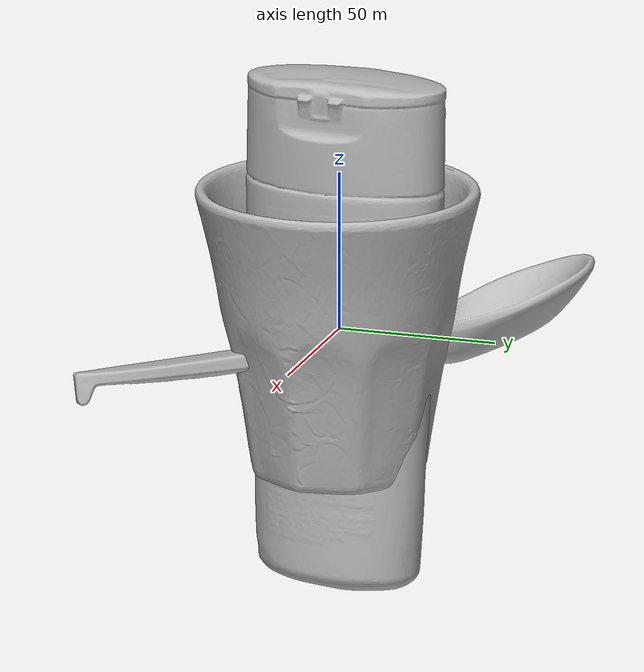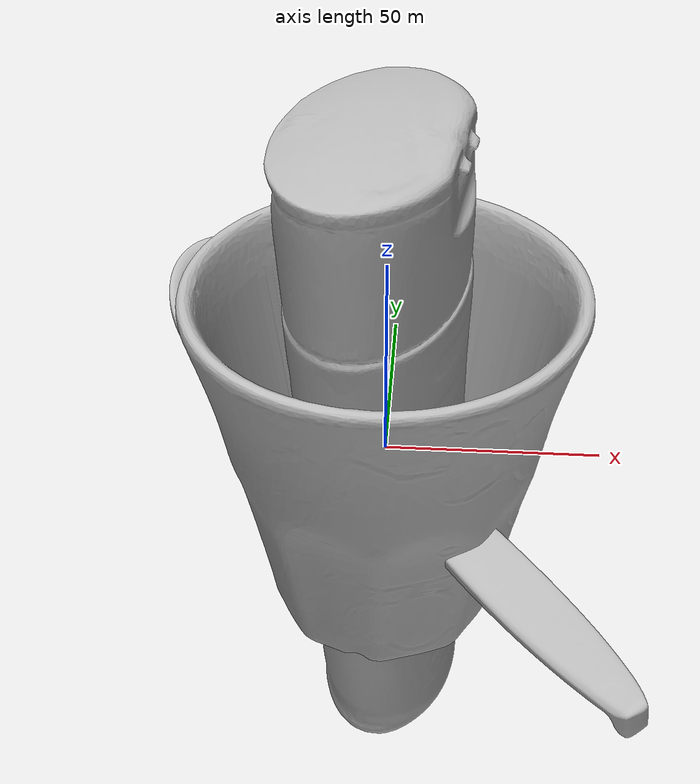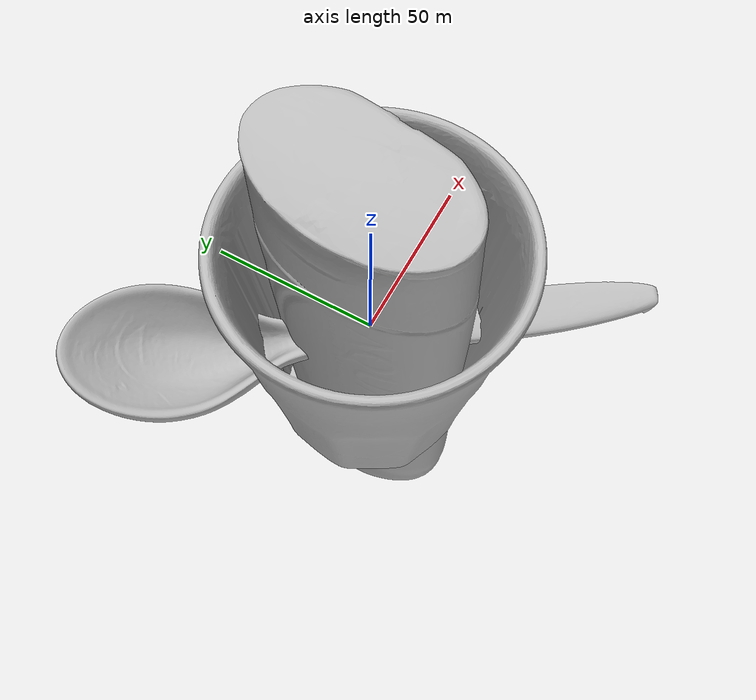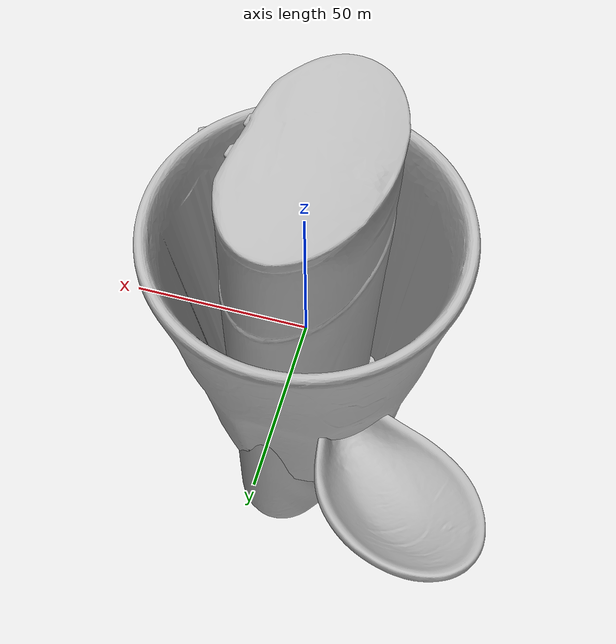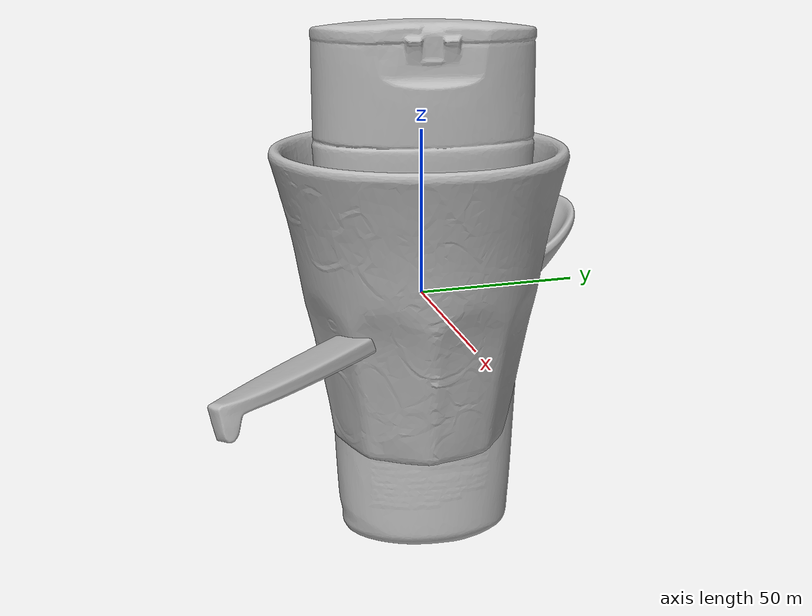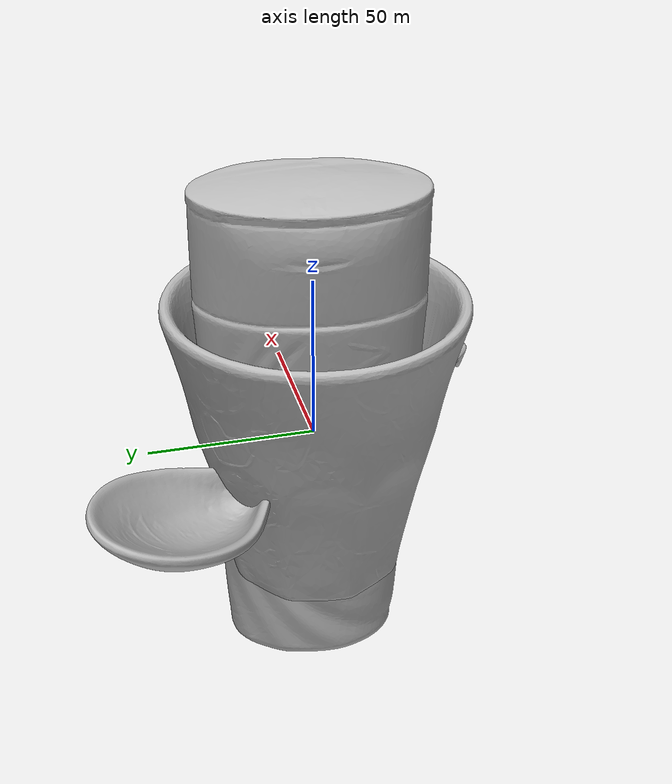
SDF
<sdf version="1.4">
 <world name="default">
  <light name="light1" type="point">
   <pose>0 0 1 0 0 0</pose>
   <diffuse>3 3 3 1</diffuse>
   <specular>3 3 3 1</specular>
  </light>
  <light name="light2" type="point">
   <pose>0 0.5 2 0 0 0</pose>
   <diffuse>1 1 1 1</diffuse>
   <specular>1 1 1 1</specular>
  </light>
  <light name="light3" type="point">
   <pose>0 0.5 2 0 0 0</pose>
   <diffuse>3 3 3 1</diffuse>
   <specular>3 3 3 1</specular>
  </light>
  <scene><ambient>0.7 0.7 0.7</ambient></scene>
  <model name="bottle1">
   <link name="link_bottle1">
    <collision name="default">
     <geometry>
      <mesh><uri>model://conditioner/collision_meshes/collision.obj</uri><scale>1.0 1.0 1.0</scale></mesh>
     </geometry>
     <surface>
      <friction><ode><mu>0.5</mu><mu2>0.5</mu2></ode></friction>
      <contact><ode><max_vel>0</max_vel><min_depth>0.0001</min_depth><kp>1e8</kp></ode></contact>
     </surface>
    </collision>
    <visual name="default">
     <geometry>
      <mesh><uri>model://conditioner/visual_meshes/visual.dae</uri><scale>1.0 1.0 1.0</scale></mesh>
     </geometry>
    </visual>
    <inertial>
     <mass>0.31316134333610535</mass>
     <pose>-0.00055994390277192 -0.0001729748910292983 0.004359682556241751 -0.005038373535624127 0.01530604069317056 0.015072338587352078</pose>
     <inertia>
      <ixx>0.0006812382</ixx>
      <iyy>0.000729753</iyy>
      <izz>0.000105037434</izz>
      <ixy>0</ixy>
      <ixz>0</ixz>
      <iyz>0</iyz>
     </inertia>
    </inertial>
   </link>
   <pose>-0.08207866549491882 0.1951899230480194 0.0812298133969307 0.036893564721758455 -0.01566362934134836 -1.7452720954728804</pose>
  </model>
  <model name="bottle2">
   <link name="link_bottle2">
    <collision name="default">
     <geometry>
      <mesh><uri>model://pigeon/collision_meshes/collision.obj</uri><scale>1.0 1.0 1.0</scale></mesh>
     </geometry>
     <surface>
      <friction><ode><mu>0.5</mu><mu2>0.5</mu2></ode></friction>
      <contact><ode><max_vel>0</max_vel><min_depth>0.0001</min_depth><kp>1e8</kp></ode></contact>
     </surface>
    </collision>
    <visual name="default">
     <geometry><mesh><uri>model://pigeon/visual_meshes/visual.dae</uri><scale>1.0 1.0 1.0</scale></mesh></geometry>
    </visual>
    <inertial>
     <mass>0.6510184407234192</mass>
     <pose>-9.675473847892135e-05 -0.00019276776583865285 -0.01593620888888836 -0.011704407543161608 -0.0012978192378484078 -0.04198827283679603</pose>
     <inertia>
      <ixx>0.0016273881</ixx>
      <iyy>0.0017372583</iyy>
      <izz>0.00033475916</izz>
      <ixy>0</ixy>
      <ixz>0</ixz>
      <iyz>0</iyz>
     </inertia>
    </inertial>
   </link>
   <pose>0.2664254307746887 0.07196906208992004 0.09864479303359985 2.4314596471520824e-05 3.4293940378210926e-06 2.2580102081630082</pose>
  </model>
  <model name="silverware1">
   <link name="link_silverware1">
    <collision name="default">
     <geometry>
      <mesh><uri>model://doraemon_spoon/collision_meshes/collision.obj</uri><scale>1.0 1.0 1.0</scale></mesh>
     </geometry>
     <surface>
      <friction><ode><mu>0.5</mu><mu2>0.5</mu2></ode></friction>
      <contact><ode><max_vel>0</max_vel><min_depth>0.0001</min_depth><kp>1e8</kp></ode></contact>
     </surface>
    </collision>
    <visual name="default">
     <geometry>
      <mesh><uri>model://doraemon_spoon/visual_meshes/visual.dae</uri><scale>1.0 1.0 1.0</scale></mesh>
     </geometry>
    </visual>
    <inertial>
     <mass>0.020366016775369644</mass>
     <pose>-0.022165074944496155 -0.0006374584045261145 -0.0033325462136417627 -0.009147200915366215 0.0738041822243956 -0.014123826891092987</pose>
     <inertia>
      <ixx>1.5952605e-06</ixx>
      <iyy>4.5307766e-05</iyy>
      <izz>4.6078047e-05</izz>
      <ixy>0</ixy>
      <ixz>0</ixz>
      <iyz>0</iyz>
     </inertia>
    </inertial>
   </link>
   <pose>0.1063133254647255 0.22153504192829132 0.014909116551280022 0.16754615642641488 -0.0062142856960678014 -0.8955770152869257</pose>
  </model>
  <model name="stationery1">
   <link name="link_stationery1">
    <collision name="default">
     <geometry>
      <mesh><uri>model://correction_fuid/collision_meshes/collision.obj</uri><scale>1.0 1.0 1.0</scale></mesh>
     </geometry>
     <surface>
      <friction><ode><mu>0.5</mu><mu2>0.5</mu2></ode></friction>
      <contact><ode><max_vel>0</max_vel><min_depth>0.0001</min_depth><kp>1e8</kp></ode></contact>
     </surface>
    </collision>
    <visual name="default">
     <geometry>
      <mesh><uri>model://correction_fuid/visual_meshes/visual.dae</uri><scale>1.0 1.0 1.0</scale></mesh>
     </geometry>
    </visual>
    <inertial>
     <mass>0.02487199380993843</mass>
     <pose>-0.00012557733862195164 -0.0009722901741042733 -0.001618212671019137 -0.010846607936808557 0.019488255039962172 -0.015992454917835536</pose>
     <inertia>
      <ixx>2.4088951e-05</ixx>
      <iyy>1.4578937e-06</iyy>
      <izz>2.4715917e-05</izz>
      <ixy>0</ixy>
      <ixz>0</ixz>
      <iyz>0</iyz>
     </inertia>
    </inertial>
   </link>
   <pose>0.2306331992149353 0.32806915044784546 0.009667962789535522 -0.007299129468962223 -0.022256624993837085 1.827574949599365</pose>
  </model>
  <model name="bowl1">
   <link name="link_bowl1">
    <collision name="default">
     <geometry>
      <mesh><uri>model://doraemon_bowl/collision_meshes/collision.obj</uri><scale>1.0 1.0 1.0</scale></mesh>
     </geometry>
     <surface>
      <friction><ode><mu>0.5</mu><mu2>0.5</mu2></ode></friction>
      <contact><ode><max_vel>0</max_vel><min_depth>0.0001</min_depth><kp>1e8</kp></ode></contact>
     </surface>
    </collision>
    <visual name="default">
     <geometry>
      <mesh><uri>model://doraemon_bowl/visual_meshes/visual.dae</uri><scale>1.0 1.0 1.0</scale></mesh>
     </geometry>
    </visual>
    <inertial>
     <mass>0.06713785231113434</mass>
     <pose>-0.014629548415541649 0.000485710974317044 -0.0020864871330559254 -0.005093962398800634 -0.10568405274446478 -0.026426476578293747</pose>
     <inertia>
      <ixx>9.309732e-05</ixx>
      <iyy>0.00012251528</iyy>
      <izz>0.00018024874</izz>
      <ixy>0</ixy>
      <ixz>0</ixz>
      <iyz>0</iyz>
     </inertia>
    </inertial>
   </link>
   <pose>0.02145778015255928 0.2231583148241043 0.025894111022353172 0.008440045872476628 0.007027796271400657 -0.08792667766537236</pose>
  </model>
  <model name="cup1">
   <link name="link_cup1">
    <collision name="default">
     <geometry>
      <mesh><uri>model://hello_kitty_cup/collision_meshes/collision.obj</uri><scale>1.0 1.0 1.0</scale></mesh>
     </geometry>
     <surface>
      <friction><ode><mu>0.5</mu><mu2>0.5</mu2></ode></friction>
      <contact><ode><max_vel>0</max_vel><min_depth>0.0001</min_depth><kp>1e8</kp></ode></contact>
     </surface>
    </collision>
    <visual name="default">
     <geometry>
      <mesh><uri>model://hello_kitty_cup/visual_meshes/visual.dae</uri><scale>1.0 1.0 1.0</scale></mesh>
     </geometry>
    </visual>
    <inertial>
     <mass>0.13384777307510376</mass>
     <pose>0.00027251095161773264 0.00027950218645855784 0.0030449770856648684 0.057791450277227645 0.007964955326408191 -0.02045228086216793</pose>
     <inertia>
      <ixx>0.0001843247</ixx>
      <iyy>0.0001863793</iyy>
      <izz>0.00015541737</izz>
      <ixy>0</ixy>
      <ixz>0</ixz>
      <iyz>0</iyz>
     </inertia>
    </inertial>
   </link>
   <pose>-0.055999476462602615 -0.2022438794374466 0.04621398448944092 -0.005711780148887455 0.010787068064245573 -2.698531272742929</pose>
  </model>
  <model name="plate1">
   <link name="link_plate1">
    <collision name="default">
     <geometry>
      <mesh><uri>model://hello_kitty_plate/collision_meshes/collision.obj</uri><scale>1.0 1.0 1.0</scale></mesh>
     </geometry>
     <surface>
      <friction><ode><mu>0.5</mu><mu2>0.5</mu2></ode></friction>
      <contact><ode><max_vel>0</max_vel><min_depth>0.0001</min_depth><kp>1e8</kp></ode></contact>
     </surface>
    </collision>
    <visual name="default">
     <geometry>
      <mesh><uri>model://hello_kitty_plate/visual_meshes/visual.dae</uri><scale>1.0 1.0 1.0</scale></mesh>
     </geometry>
    </visual>
    <inertial>
     <mass>0.0821625292301178</mass>
     <pose>0.0073142931796610355 0.00028937371098436415 -0.0027947186026722193 -0.0001043184795654353 -0.007054440405958318 -0.014449014916312054</pose>
     <inertia>
      <ixx>0.00015843393</ixx>
      <iyy>0.00029901267</iyy>
      <izz>0.00045402072</izz>
      <ixy>0</ixy>
      <ixz>0</ixz>
      <iyz>0</iyz>
     </inertia>
    </inertial>
   </link>
   <pose>0.15751560032367706 0.22584247589111328 0.06098402291536331 -0.3292929923628332 0.3862849923599149 0.7044328095543805</pose>
  </model>
  <physics type="ode">
   <max_contacts>50</max_contacts>
   <ode>
    <solver><type>quick</type><iters>75</iters></solver>
    <constraints>
     <contact_max_correcting_vel>0</contact_max_correcting_vel>
     <contact_surface_layer>0</contact_surface_layer>
    </constraints>
   </ode>
  </physics>
 </world>
</sdf>
